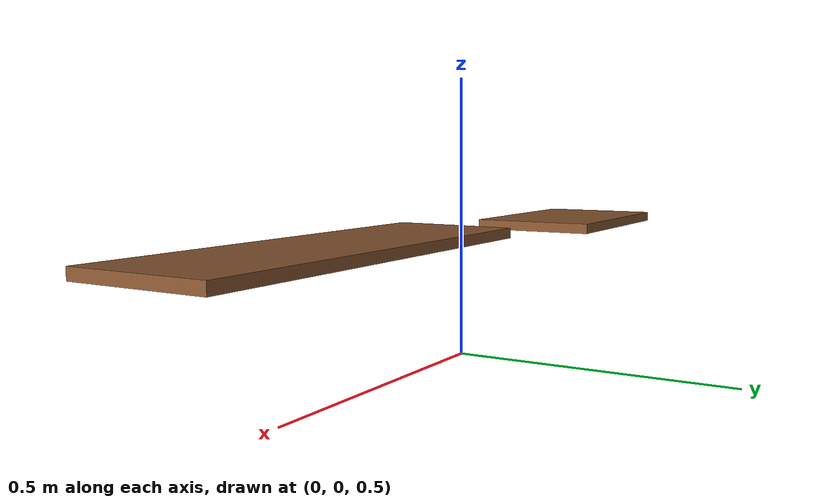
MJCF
<mujoco model="table">

  <worldbody>

    <body name="table" pos="-0.5 0 0.71">
      <geom name="table_top" type="box" size="0.2 0.125 0.01"
            contype="8" conaffinity="0" friction="0.8 0.005 0.0001"
            rgba="0.55 0.35 0.2 1"/>
    </body>

    <body name="table2" pos="0.25 -0.1 0.71" euler="-0.2 0 0">
      <geom name="table2_top" type="box" size="0.4 0.125 0.01"
            contype="8" conaffinity="0" friction="0.8 0.005 0.0001"
            rgba="0.55 0.35 0.2 1"/>
    </body>

  </worldbody>
</mujoco>
